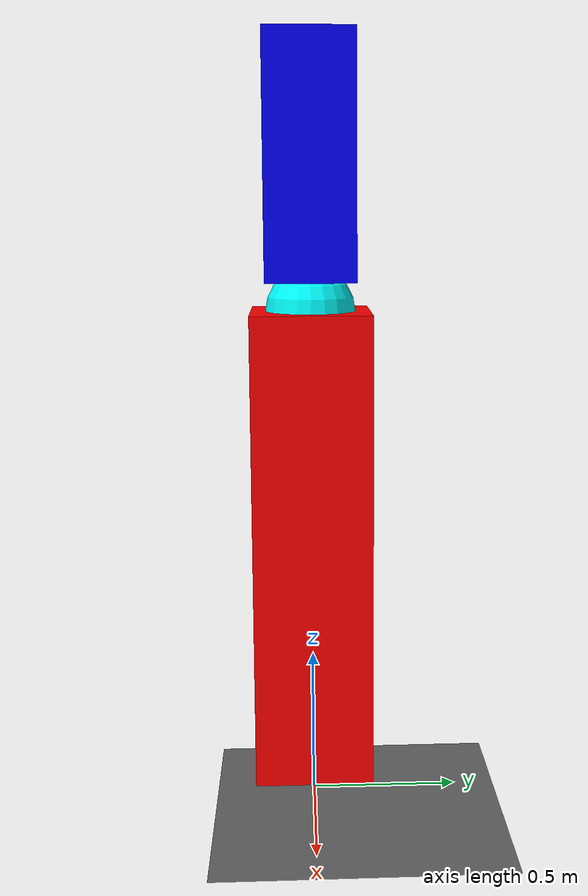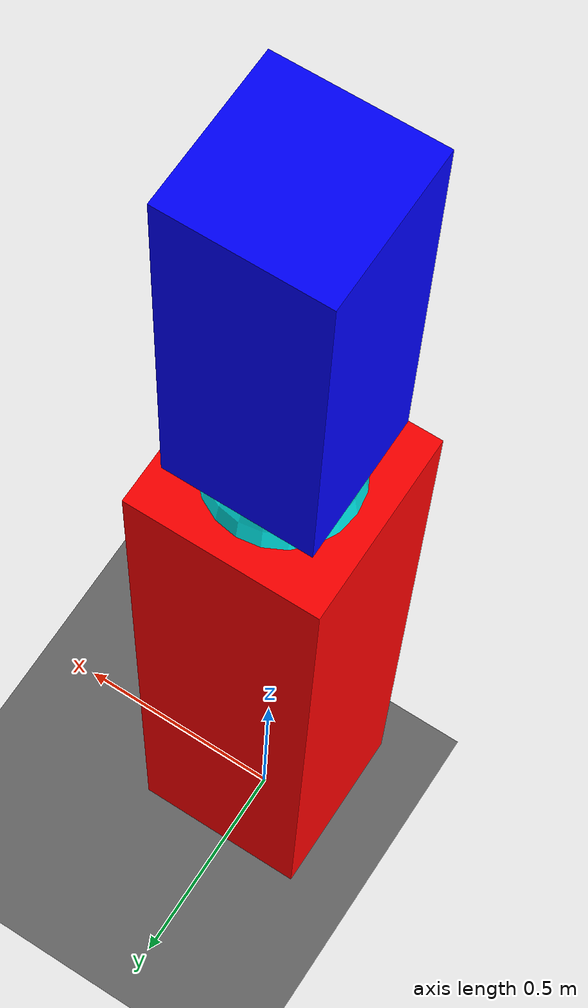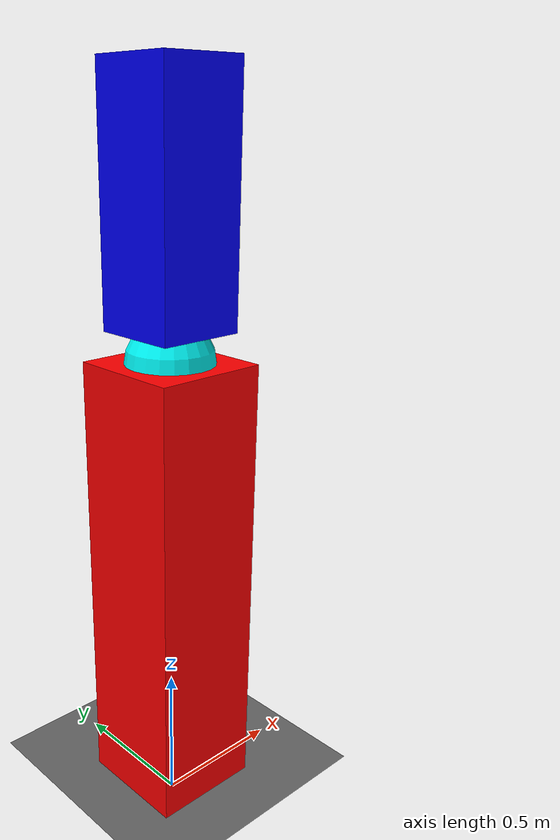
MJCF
<mujoco>
  <include file="./common/materials.xml"/>
  <option timestep="0.01"/>

  <worldbody>

    <light name="light" pos="0 0 3"/>
    <camera name="fixed" pos="0 -3 3" xyaxes="1 0 0 0 1 1"/>
    <geom name="floor" type="plane" size="5 5 0.1" pos="0 0 0" rgba="0.4 0.4 0.4 1" material="motphys-ground"/>

    <body name="base" pos="0 0 0.1">
      <body name="arm_A" pos="0 0 0">
        <joint name="joint_A" type="hinge" axis="0 0 1" limited="true" range = "-90 90"/>
        <geom name="cube_A" type="box" size="0.2 0.2 0.8" pos="0 0 0.8" rgba="1 0 0 1"/>

        <body name="arm_B" pos="0 0 1.7">
          <joint type="ball" name="joint_B" limited="true" range = "0 30"/>
          <geom name="cube_B" type="box" size="0.15 0.15 0.4" pos="0 0 0.4" rgba="0 0 1 1"/>
        </body>

        <body name="sphere" pos="0 0 1.6">
          <geom name="sphere" type="sphere" size="0.15" pos="0 0 0" rgba="0 1 1 1"/>
        </body>

      </body>
    </body>
  </worldbody>
</mujoco>

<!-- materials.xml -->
<!--
Common textures, colors and materials to be used throughout this suite. Some
materials such as xxx_highlight are activated on occurence of certain events,
for example receiving a positive reward.
-->
<mujoco>
  <asset>
    <texture name="motphys-ground" type="2d" file="motphys-ground.png" />
    <material name="motphys-ground" texture="motphys-ground" texuniform="true"
      texrepeat="0.4 0.4" />
  </asset>
</mujoco>
